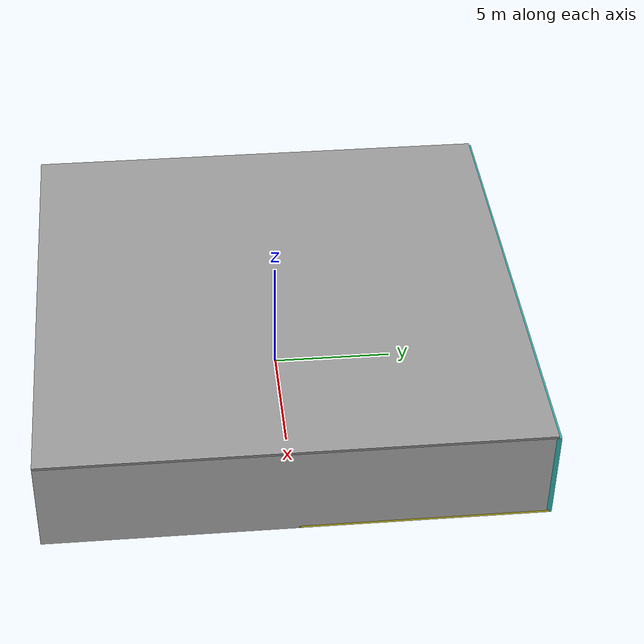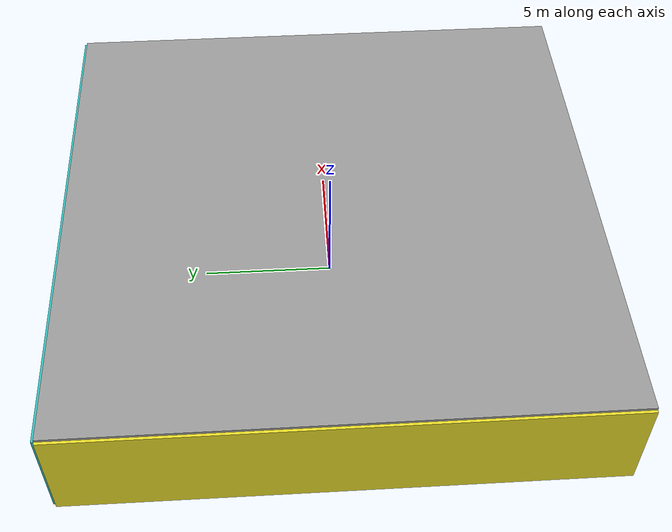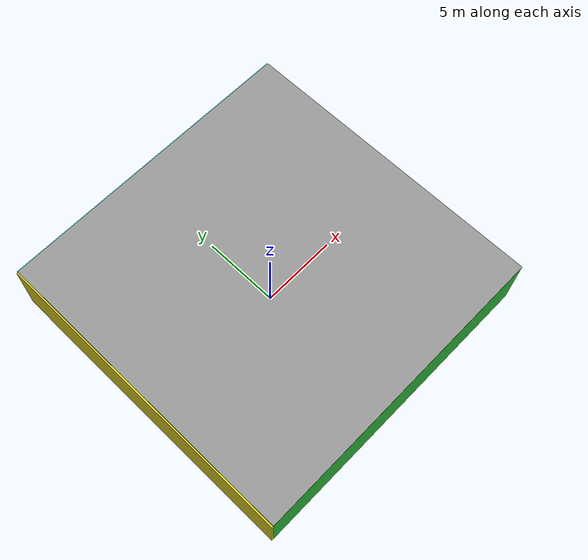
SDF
<sdf version="1.4">
 <world name="default">
  <physics type="ode">
   <max_step_size>0.001</max_step_size>
   <real_time_factor>1</real_time_factor>
   <real_time_update_rate>1000</real_time_update_rate>
   <gravity>0 0 -9.8</gravity>
  </physics>
  <scene><ambient>0.4 0.4 0.4 1</ambient><background>0.7 0.7 0.7 1</background><shadows>1</shadows></scene>
  <model name="Surrounding">
   <static>1</static>
   <link name="Ceiling">
    <collision name="Ceiling_Collision"><geometry><box><size>20 20 0.1</size></box></geometry></collision>
    <visual name="Ceiling_Visual">
     <geometry><box><size>20 20 0.1</size></box></geometry>
     <material>
      <script><uri>file://media/materials/scripts/gazebo.material</uri><name>Gazebo/GreyGradientSky</name></script>
     </material>
    </visual>
    <pose>0 0 4.05 0 0 0</pose>
   </link>
   <link name="Wall_South">
    <collision name="Wall_South_Collision">
     <geometry><box><size>20 0 4</size></box></geometry>
     <pose>0 0 2 0 -0 0</pose>
    </collision>
    <visual name="Wall_South_Visual">
     <pose>0 0 2 0 -0 0</pose>
     <geometry><box><size>20 0 4</size></box></geometry>
     <material>
      <script><uri>file://media/materials/scripts/gazebo.material</uri><name>Gazebo/Green</name></script>
     </material>
    </visual>
    <velocity_decay><linear>0</linear><angular>0</angular></velocity_decay>
    <pose>0 -10 0 0 -0 0</pose>
   </link>
   <link name="Wall_East">
    <collision name="Wall_21_Collision">
     <geometry><box><size>20 0 4</size></box></geometry>
     <pose>0 0 2 0 -0 0</pose>
    </collision>
    <visual name="Wall_21_Visual">
     <pose>0 0 2 0 -0 0</pose>
     <geometry><box><size>20 0 4</size></box></geometry>
     <material>
      <script><uri>file://media/materials/scripts/gazebo.material</uri><name>Gazebo/CloudySky</name></script>
     </material>
    </visual>
    <velocity_decay><linear>0</linear><angular>0</angular></velocity_decay>
    <pose>10 0 0 0 -0 1.5708</pose>
   </link>
   <link name="Wall_North">
    <collision name="Wall_22_Collision">
     <geometry><box><size>20 0.2 4</size></box></geometry>
     <pose>0 0 2 0 -0 0</pose>
    </collision>
    <visual name="Wall_22_Visual">
     <pose>0 0 2 0 -0 0</pose>
     <geometry><box><size>20 0.2 4</size></box></geometry>
     <material>
      <script><uri>file://media/materials/scripts/gazebo.material</uri><name>Gazebo/Turquoise</name></script>
     </material>
    </visual>
    <velocity_decay><linear>0</linear><angular>0</angular></velocity_decay>
    <pose>0 10 0 0 -0 0</pose>
   </link>
   <link name="Wall_West">
    <collision name="Wall_23_Collision">
     <geometry><box><size>20 0.2 4</size></box></geometry>
     <pose>0 0 2 0 -0 0</pose>
    </collision>
    <visual name="Wall_23_Visual">
     <pose>0 0 2 0 -0 0</pose>
     <geometry><box><size>20 0.2 4</size></box></geometry>
     <material>
      <script><uri>file://media/materials/scripts/gazebo.material</uri><name>Gazebo/YellowGlow</name></script>
     </material>
    </visual>
    <velocity_decay><linear>0</linear><angular>0</angular></velocity_decay>
    <pose>-10 0 0 0 0 -1.5708</pose>
   </link>
   <link name="Ground_link">
    <collision name="collision">
     <pose>0 0 .05 0 -0 0</pose>
     <geometry><box><size>20 20 0.1</size></box></geometry>
    </collision>
    <visual name="visual">
     <pose>0 0 .05 0 -0 0</pose>
     <geometry><box><size>20 20 0.1</size></box></geometry>
     <material>
      <script><uri>file://media/materials/scripts/gazebo.material</uri><name>Gazebo/YellowGlow</name></script>
     </material>
    </visual>
   </link>
   <static>1</static>
  </model>
  <spherical_coordinates>
   <surface_model>EARTH_WGS84</surface_model>
   <latitude_deg>0</latitude_deg>
   <longitude_deg>0</longitude_deg>
   <elevation>0</elevation>
   <heading_deg>0</heading_deg>
  </spherical_coordinates>
  <light name="lightball_0" type="diffuse">
   <diffuse>0.8 0.8 0.8 1</diffuse>
   <specular>0.2 0.2 0.2 1</specular>
   <attenuation>
    <range>100</range>
    <constant>0.7</constant>
    <linear>0.01</linear>
    <quadratic>0.001</quadratic>
   </attenuation>
   <direction>-0.5 0.1 -0.9</direction>
   <pose>-5.58688599175 4.24240881931 2.00678716299 0 0 0</pose>
  </light>
  <light name="lightball_1" type="diffuse">
   <diffuse>0.8 0.8 0.8 1</diffuse>
   <specular>0.2 0.2 0.2 1</specular>
   <attenuation>
    <range>100</range>
    <constant>0.7</constant>
    <linear>0.01</linear>
    <quadratic>0.001</quadratic>
   </attenuation>
   <direction>-0.5 0.1 -0.9</direction>
   <pose>-4.00064684762 -6.99512867907 1.41435244498 0 0 0</pose>
  </light>
  <light name="lightball_2" type="diffuse">
   <diffuse>0.8 0.8 0.8 1</diffuse>
   <specular>0.2 0.2 0.2 1</specular>
   <attenuation>
    <range>100</range>
    <constant>0.7</constant>
    <linear>0.01</linear>
    <quadratic>0.001</quadratic>
   </attenuation>
   <direction>-0.5 0.1 -0.9</direction>
   <pose>3.90882268297 4.72238236768 3.86981234803 0 0 0</pose>
  </light>
  <light name="lightball_3" type="diffuse">
   <diffuse>0.8 0.8 0.8 1</diffuse>
   <specular>0.2 0.2 0.2 1</specular>
   <attenuation>
    <range>100</range>
    <constant>0.7</constant>
    <linear>0.01</linear>
    <quadratic>0.001</quadratic>
   </attenuation>
   <direction>-0.5 0.1 -0.9</direction>
   <pose>-5.15398772869 -5.78989343139 1.28799335943 0 0 0</pose>
  </light>
  <light name="lightball_4" type="diffuse">
   <diffuse>0.8 0.8 0.8 1</diffuse>
   <specular>0.2 0.2 0.2 1</specular>
   <attenuation>
    <range>100</range>
    <constant>0.7</constant>
    <linear>0.01</linear>
    <quadratic>0.001</quadratic>
   </attenuation>
   <direction>-0.5 0.1 -0.9</direction>
   <pose>5.58881585605 -4.92991757302 2.42258152089 0 0 0</pose>
  </light>
  <light name="lightball_5" type="diffuse">
   <diffuse>0.8 0.8 0.8 1</diffuse>
   <specular>0.2 0.2 0.2 1</specular>
   <attenuation>
    <range>100</range>
    <constant>0.7</constant>
    <linear>0.01</linear>
    <quadratic>0.001</quadratic>
   </attenuation>
   <direction>-0.5 0.1 -0.9</direction>
   <pose>-8.21165892684 1.76144463307 1.52288256316 0 0 0</pose>
  </light>
  <light name="lightball_6" type="diffuse">
   <diffuse>0.8 0.8 0.8 1</diffuse>
   <specular>0.2 0.2 0.2 1</specular>
   <attenuation>
    <range>100</range>
    <constant>0.7</constant>
    <linear>0.01</linear>
    <quadratic>0.001</quadratic>
   </attenuation>
   <direction>-0.5 0.1 -0.9</direction>
   <pose>-9.57955486542 7.74750081816 2.88486586926 0 0 0</pose>
  </light>
  <light name="lightball_7" type="diffuse">
   <diffuse>0.8 0.8 0.8 1</diffuse>
   <specular>0.2 0.2 0.2 1</specular>
   <attenuation>
    <range>100</range>
    <constant>0.7</constant>
    <linear>0.01</linear>
    <quadratic>0.001</quadratic>
   </attenuation>
   <direction>-0.5 0.1 -0.9</direction>
   <pose>8.28332998635 7.0491755059 0.816353474267 0 0 0</pose>
  </light>
  <light name="lightball_8" type="diffuse">
   <diffuse>0.8 0.8 0.8 1</diffuse>
   <specular>0.2 0.2 0.2 1</specular>
   <attenuation>
    <range>100</range>
    <constant>0.7</constant>
    <linear>0.01</linear>
    <quadratic>0.001</quadratic>
   </attenuation>
   <direction>-0.5 0.1 -0.9</direction>
   <pose>0.277078964469 5.26775867954 1.39707643323 0 0 0</pose>
  </light>
  <light name="lightball_9" type="diffuse">
   <diffuse>0.8 0.8 0.8 1</diffuse>
   <specular>0.2 0.2 0.2 1</specular>
   <attenuation>
    <range>100</range>
    <constant>0.7</constant>
    <linear>0.01</linear>
    <quadratic>0.001</quadratic>
   </attenuation>
   <direction>-0.5 0.1 -0.9</direction>
   <pose>5.76944512227 6.4739916357 3.87188763437 0 0 0</pose>
  </light>
  <light name="lightball_10" type="diffuse">
   <diffuse>0.8 0.8 0.8 1</diffuse>
   <specular>0.2 0.2 0.2 1</specular>
   <attenuation>
    <range>100</range>
    <constant>0.7</constant>
    <linear>0.01</linear>
    <quadratic>0.001</quadratic>
   </attenuation>
   <direction>-0.5 0.1 -0.9</direction>
   <pose>5.92541322959 7.1963603988 1.11383573302 0 0 0</pose>
  </light>
  <light name="lightball_11" type="diffuse">
   <diffuse>0.8 0.8 0.8 1</diffuse>
   <specular>0.2 0.2 0.2 1</specular>
   <attenuation>
    <range>100</range>
    <constant>0.7</constant>
    <linear>0.01</linear>
    <quadratic>0.001</quadratic>
   </attenuation>
   <direction>-0.5 0.1 -0.9</direction>
   <pose>-9.61485482515 -3.38475905067 3.8009405719 0 0 0</pose>
  </light>
  <include><uri>model://cabinet</uri><pose>-6.40436856122 -3.78589292912 0 0 0 0.278042423879</pose></include>
  <include><uri>model://cabinet</uri><pose>-4.23746850166 -7.60728304857 0 0 0 1.3376853964</pose></include>
  <include>
   <uri>model://robocup_3Dsim_goal</uri>
   <pose>-4.66695112248 2.53941140909 0 0 0 2.48437152418</pose>
  </include>
  <include>
   <uri>model://textured_shapes</uri>
   <pose>1.9290998882 -3.93591133008 0 0 0 0.148817448751</pose>
  </include>
  <include><uri>model://table</uri><pose>3.4442752932 -2.17468486405 0 0 0 1.72953462384</pose></include>
  <include>
   <uri>model://textured_shapes</uri>
   <pose>4.48570636913 7.45670961865 0 0 0 1.53596287391</pose>
  </include>
  <include><uri>model://cabinet</uri><pose>8.34296460705 -8.34795767357 0 0 0 3.08200065458</pose></include>
  <include><uri>model://table</uri><pose>7.97689581724 -5.56620057724 0 0 0 1.46321142794</pose></include>
 </world>
</sdf>

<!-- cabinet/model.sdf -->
<sdf version="1.5">
  <model name="cabinet">
    <static>true</static>
    <link name="cabinet_bottom_plate">
      <inertial>
        <pose>0 0 -1 0 0 0</pose>
        <inertia>
          <ixx>2.050000</ixx>
          <ixy>0</ixy>
          <ixz>0</ixz>
          <iyy>2.050000</iyy>
          <iyz>0</iyz>
          <izz>2.050000</izz>
        </inertia>
        <mass>25.000000</mass>
      </inertial>
      <collision name="cabinet_bottom_plate_geom">
        <pose>0 0 0.010000 0 0 0</pose>
        <geometry>
          <box>
            <size>0.450000 0.450000 0.020000</size>
          </box>
        </geometry>
      </collision>
      <visual name="cabinet_bottom_plate_geom_visual">
        <pose>0 0 0.010000 0 0 0</pose>
        <geometry>
          <box>
            <size>0.450000 0.450000 0.020000</size>
          </box>
        </geometry>
        <material>
          <script>
            <uri>model://media/materials/scripts/gazebo.material</uri>
            <name>Gazebo/Wood</name>
          </script>
        </material>
      </visual>
      <collision name="cabinet_bottom_plate_geom_cabinet_back_plate">
        <pose>0.235000 0 0.510000 0 0 0</pose>
        <geometry>
          <box>
            <size>0.020000 0.450000 1.020000</size>
          </box>
        </geometry>
      </collision>
      <visual name="cabinet_bottom_plate_geom_cabinet_back_plate_visual">
        <pose>0.235000 0 0.510000 0 0 0</pose>
        <geometry>
          <box>
            <size>0.020000 0.450000 1.020000</size>
          </box>
        </geometry>
        <material>
          <script>
            <uri>model://media/materials/scripts/gazebo.material</uri>
            <name>Gazebo/Wood</name>
          </script>
        </material>
      </visual>
      <collision name="cabinet_bottom_plate_geom_cabinet_left_plate">
        <pose>0 0.235000 0.510000 0 0 0</pose>
        <geometry>
          <box>
            <size>0.450000 0.020000 1.020000</size>
          </box>
        </geometry>
      </collision>
      <visual name="cabinet_bottom_plate_geom_cabinet_left_plate_visual">
        <pose>0 0.235000 0.510000 0 0 0</pose>
        <geometry>
          <box>
            <size>0.450000 0.020000 1.020000</size>
          </box>
        </geometry>
        <material>
          <script>
            <uri>model://media/materials/scripts/gazebo.material</uri>
            <name>Gazebo/Wood</name>
          </script>
        </material>
      </visual>
      <collision name="cabinet_bottom_plate_geom_cabinet_middle_plate">
        <pose>0 0 0.510000 0 0 0</pose>
        <geometry>
          <box>
            <size>0.450000 0.450000 0.020000</size>
          </box>
        </geometry>
      </collision>
      <visual name="cabinet_bottom_plate_geom_cabinet_middle_plate_visual">
        <pose>0 0 0.510000 0 0 0</pose>
        <geometry>
          <box>
            <size>0.450000 0.450000 0.020000</size>
          </box>
        </geometry>
        <material>
          <script>
            <uri>model://media/materials/scripts/gazebo.material</uri>
            <name>Gazebo/Wood</name>
          </script>
        </material>
      </visual>
      <collision name="cabinet_bottom_plate_geom_cabinet_right_plate">
        <pose>0 -0.235000 0.510000 0 0 0</pose>
        <geometry>
          <box>
            <size>0.450000 0.020000 1.020000</size>
          </box>
        </geometry>
      </collision>
      <visual name="cabinet_bottom_plate_geom_cabinet_right_plate_visual">
        <pose>0 -0.235000 0.510000 0 0 0</pose>
        <geometry>
          <box>
            <size>0.450000 0.020000 1.020000</size>
          </box>
        </geometry>
        <material>
          <script>
            <uri>model://media/materials/scripts/gazebo.material</uri>
            <name>Gazebo/Wood</name>
          </script>
        </material>
      </visual>
      <collision name="cabinet_bottom_plate_geom_cabinet_top_plate">
        <pose>0 0 1.010000 0 0 0</pose>
        <geometry>
          <box>
            <size>0.450000 0.450000 0.020000</size>
          </box>
        </geometry>
      </collision>
      <visual name="cabinet_bottom_plate_geom_cabinet_top_plate_visual">
        <pose>0 0 1.010000 0 0 0</pose>
        <geometry>
          <box>
            <size>0.450000 0.450000 0.020000</size>
          </box>
        </geometry>
        <material>
          <script>
            <uri>model://media/materials/scripts/gazebo.material</uri>
            <name>Gazebo/Wood</name>
          </script>
        </material>
      </visual>
    </link>
  </model>
</sdf>

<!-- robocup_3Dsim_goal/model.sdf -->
<sdf version="1.5">
  <model name="robocup_3d_goal">
    <static>true</static>
    <link name="left_post">
      <pose>0 1.05 0.45 0 0 0</pose>
      <collision name="collision">
        <geometry>
          <cylinder>
            <radius>0.05</radius>
            <length>0.9</length>
          </cylinder>
        </geometry>
      </collision>
      <visual name="visual">
        <geometry>
          <cylinder>
            <radius>0.05</radius>
            <length>0.9</length>
          </cylinder>
        </geometry>
        <material>
          <script>
            <uri>file://media/materials/scripts/gazebo.material</uri>
            <name>Gazebo/ZincYellow</name>
          </script>
        </material>
      </visual>
    </link>
    <link name="left_support_horiz_lower">
      <pose>0.30 1.05 0.01 0 0 0</pose>
      <collision name="collision">
        <geometry>
          <box>
            <size>0.50 0.02 0.02</size>
          </box>
        </geometry>
      </collision>
      <visual name="visual">
        <geometry>
          <box>
            <size>0.50 0.02 0.02</size>
          </box>
        </geometry>
        <material>
          <script>
            <uri>file://media/materials/scripts/gazebo.material</uri>
            <name>Gazebo/White</name>
          </script>
        </material>
      </visual>
    </link>
    <link name="left_support_horiz_upper">
      <pose>0.30 1.05 0.79 0 0 0</pose>
      <collision name="collision">
        <geometry>
          <box>
            <size>0.50 0.02 0.02</size>
          </box>
        </geometry>
      </collision>
      <visual name="visual">
        <geometry>
          <box>
            <size>0.50 0.02 0.02</size>
          </box>
        </geometry>
        <material>
          <script>
            <uri>file://media/materials/scripts/gazebo.material</uri>
            <name>Gazebo/White</name>
          </script>
        </material>
      </visual>
    </link>
    <link name="left_support_vertical">
      <pose>0.56 1.05 0.4 0 1.5708 0</pose>
      <collision name="collision">
        <geometry>
          <box>
            <size>0.80 0.02 0.02</size>
          </box>
        </geometry>
      </collision>
      <visual name="visual">
        <geometry>
          <box>
            <size>0.80 0.02 0.02</size>
          </box>
        </geometry>
        <material>
          <script>
            <uri>file://media/materials/scripts/gazebo.material</uri>
            <name>Gazebo/White</name>
          </script>
        </material>
      </visual>
    </link>
    <link name="right_support_horiz_lower">
      <pose>0.30 -1.05 0.01 0 0 0</pose>
      <collision name="collision">
        <geometry>
          <box>
            <size>0.50 0.02 0.02</size>
          </box>
        </geometry>
      </collision>
      <visual name="visual">
        <geometry>
          <box>
            <size>0.50 0.02 0.02</size>
          </box>
        </geometry>
        <material>
          <script>
            <uri>file://media/materials/scripts/gazebo.material</uri>
            <name>Gazebo/White</name>
          </script>
        </material>
      </visual>
    </link>
    <link name="right_support_horiz_upper">
      <pose>0.30 -1.05 0.79 0 0 0</pose>
      <collision name="collision">
        <geometry>
          <box>
            <size>0.50 0.02 0.02</size>
          </box>
        </geometry>
      </collision>
      <visual name="visual">
        <geometry>
          <box>
            <size>0.50 0.02 0.02</size>
          </box>
        </geometry>
        <material>
          <script>
            <uri>file://media/materials/scripts/gazebo.material</uri>
            <name>Gazebo/White</name>
          </script>
        </material>
      </visual>
    </link>
    <link name="right_support_vertical">
      <pose>0.56 -1.05 0.4 0 1.5708 0</pose>
      <collision name="collision">
        <geometry>
          <box>
            <size>0.80 0.02 0.02</size>
          </box>
        </geometry>
      </collision>
      <visual name="visual">
        <geometry>
          <box>
            <size>0.80 0.02 0.02</size>
          </box>
        </geometry>
        <material>
          <script>
            <uri>file://media/materials/scripts/gazebo.material</uri>
            <name>Gazebo/White</name>
          </script>
        </material>
      </visual>
    </link>
    <link name="center_support_horiz_lower">
      <pose>0.56 0 0.01 0 1.5708 0</pose>
      <collision name="collision">
        <geometry>
          <box>
            <size>0.02 2.08 0.02</size>
          </box>
        </geometry>
      </collision>
      <visual name="visual">
        <geometry>
          <box>
            <size>0.02 2.08 0.02</size>
          </box>
        </geometry>
        <material>
          <script>
            <uri>file://media/materials/scripts/gazebo.material</uri>
            <name>Gazebo/White</name>
          </script>
        </material>
      </visual>
    </link>
    <link name="center_support_horiz_upper">
      <pose>0.56 0 0.79 0 1.5708 0</pose>
      <collision name="collision">
        <geometry>
          <box>
            <size>0.02 2.08 0.02</size>
          </box>
        </geometry>
      </collision>
      <visual name="visual">
        <geometry>
          <box>
            <size>0.02 2.08 0.02</size>
          </box>
        </geometry>
        <material>
          <script>
            <uri>file://media/materials/scripts/gazebo.material</uri>
            <name>Gazebo/White</name>
          </script>
        </material>
      </visual>
    </link>
    <link name="right_post">
      <pose>0 -1.05 0.45 0 0 0</pose>
      <collision name="collision">
        <geometry>
          <cylinder>
            <radius>0.05</radius>
            <length>0.9</length>
          </cylinder>
        </geometry>
      </collision>
      <visual name="visual">
        <geometry>
          <cylinder>
            <radius>0.05</radius>
            <length>0.9</length>
          </cylinder>
        </geometry>
        <material>
          <script>
            <uri>file://media/materials/scripts/gazebo.material</uri>
            <name>Gazebo/ZincYellow</name>
          </script>
        </material>
      </visual>
    </link>
    <link name="crossbar">
      <pose>0 0 0.85 1.57 1.57 0</pose>
      <collision name="collision">
        <geometry>
          <cylinder>
            <radius>0.05</radius>
            <length>2.0</length>
          </cylinder>
        </geometry>
      </collision>
      <visual name="visual">
        <geometry>
          <cylinder>
            <radius>0.05</radius>
            <length>2.0</length>
          </cylinder>
        </geometry>
        <material>
          <script>
            <uri>file://media/materials/scripts/gazebo.material</uri>
            <name>Gazebo/ZincYellow</name>
          </script>
        </material>
      </visual>
    </link>
    <link name="center_net">
      <pose>0.56 0 0.40 0 0 0</pose>
      <collision name="collision">
        <geometry>
          <box>
            <size>0.01 2.1 0.80</size>
          </box>
        </geometry>
      </collision>
      <visual name="visual">
        <geometry>
          <box>
            <size>0.01 2.1 0.80</size>
          </box>
        </geometry>
        <material>
          <script>
            <uri>model://../model_source/models/robocup09_spl_field/materials/scripts/</uri>
            <uri>model://../model_source/models/robocup09_spl_field/materials/textures/</uri>
            <name>RoboCup/Net</name>
          </script>
        </material>
      </visual>
    </link>
    <link name="left_net">
      <pose>0.30 1.05 0.40 0 0 0</pose>
      <collision name="collision">
        <geometry>
          <box>
            <size>0.50 0.01 0.76</size>
          </box>
        </geometry>
      </collision>
      <visual name="visual">
        <geometry>
          <box>
            <size>0.50 0.01 0.76</size>
          </box>
        </geometry>
        <material>
          <script>
            <uri>model://../model_source/models/robocup09_spl_field/materials/scripts/</uri>
            <uri>model://../model_source/models/robocup09_spl_field/materials/textures/</uri>
            <name>RoboCup/Net</name>
          </script>
        </material>
      </visual>
    </link>
    <link name="right_net">
      <pose>0.30 -1.05 0.40 0 0 0</pose>
      <collision name="collision">
        <geometry>
          <box>
            <size>0.50 0.01 0.76</size>
          </box>
        </geometry>
      </collision>
      <visual name="visual">
        <geometry>
          <box>
            <size>0.50 0.01 0.76</size>
          </box>
        </geometry>
        <material>
          <script>
            <uri>model://../model_source/models/robocup09_spl_field/materials/scripts/</uri>
            <uri>model://../model_source/models/robocup09_spl_field/materials/textures/</uri>
            <name>RoboCup/Net</name>
          </script>
        </material>
      </visual>
    </link>
  </model>
</sdf>

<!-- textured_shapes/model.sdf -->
<sdf version="1.6">
  <model name="textured_shapes">
    <pose>0 0 0.5 0 0 0</pose>
    <link name="box">
      <pose>0 -1.5 0 0 0 0</pose>
      <collision name="collision">
        <geometry>
          <box>
            <size>1 1 1</size>
          </box>
        </geometry>
      </collision>
      <visual name="visual">
        <geometry>
          <box>
            <size>1 1 1</size>
          </box>
        </geometry>
        <material>
          <script>
            <uri>model://../model_source/models/textured_shapes/materials/scripts</uri>
            <uri>model://../model_source/models/textured_shapes/materials/textures</uri>
            <name>TexturedShape/Squares</name>
          </script>
        </material>
      </visual>
    </link>
    <link name="sphere">
      <collision name="collision">
        <geometry>
          <sphere>
            <radius>0.5</radius>
          </sphere>
        </geometry>
      </collision>
      <visual name="visual">
        <geometry>
          <sphere>
            <radius>0.5</radius>
          </sphere>
        </geometry>
        <material>
          <script>
            <uri>model://../model_source/models/textured_shapes/materials/scripts</uri>
            <uri>model://../model_source/models/textured_shapes/materials/textures</uri>
            <name>TexturedShape/Squares</name>
          </script>
        </material>
      </visual>
    </link>
    <link name="cylinder">
      <pose>0 1.5 0 0 0 0</pose>
      <collision name="collision">
        <geometry>
          <cylinder>
            <radius>0.5</radius>
            <length>1</length>
          </cylinder>
        </geometry>
      </collision>
      <visual name="visual">
        <geometry>
          <cylinder>
            <radius>0.5</radius>
            <length>1</length>
          </cylinder>
        </geometry>
        <material>
          <script>
            <uri>model://../model_source/models/textured_shapes/materials/scripts</uri>
            <uri>model://../model_source/models/textured_shapes/materials/textures</uri>
            <name>TexturedShape/Squares</name>
          </script>
        </material>
      </visual>
    </link>
  </model>
</sdf>

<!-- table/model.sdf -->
<sdf version="1.5">
  <model name="table">
    <static>true</static>
    <link name="link">
      <collision name="surface">
        <pose>0 0 1.0 0 0 0</pose>
        <geometry>
          <box>
            <size>1.5 0.8 0.03</size>
          </box>
        </geometry>
        <surface>
          <friction>
            <ode>
              <mu>0.6</mu>
              <mu2>0.6</mu2>
            </ode>
          </friction>
        </surface>
      </collision>
      <visual name="visual1">
        <pose>0 0 1.0 0 0 0</pose>
        <geometry>
          <box>
            <size>1.5 0.8 0.03</size>
          </box>
        </geometry>
        <material>
          <script>
            <uri>model://media/materials/scripts/gazebo.material</uri>
            <name>Gazebo/Wood</name>
          </script>
        </material>
      </visual>
      <collision name="front_left_leg">
        <pose>0.68 0.38 0.5 0 0 0</pose>
        <geometry>
          <cylinder>
            <radius>0.02</radius>
            <length>1.0</length>
          </cylinder>
        </geometry>
      </collision>
      <visual name="front_left_leg">
        <pose>0.68 0.38 0.5 0 0 0</pose>
        <geometry>
          <cylinder>
            <radius>0.02</radius>
            <length>1.0</length>
          </cylinder>
        </geometry>
        <material>
          <script>
            <uri>model://media/materials/scripts/gazebo.material</uri>
            <name>Gazebo/Grey</name>
          </script>
        </material>
      </visual>
      <collision name="front_right_leg">
        <pose>0.68 -0.38 0.5 0 0 0</pose>
        <geometry>
          <cylinder>
            <radius>0.02</radius>
            <length>1.0</length>
          </cylinder>
        </geometry>
      </collision>
      <visual name="front_right_leg">
        <pose>0.68 -0.38 0.5 0 0 0</pose>
        <geometry>
          <cylinder>
            <radius>0.02</radius>
            <length>1.0</length>
          </cylinder>
        </geometry>
        <material>
          <script>
            <uri>model://media/materials/scripts/gazebo.material</uri>
            <name>Gazebo/Grey</name>
          </script>
        </material>
      </visual>
      <collision name="back_right_leg">
        <pose>-0.68 -0.38 0.5 0 0 0</pose>
        <geometry>
          <cylinder>
            <radius>0.02</radius>
            <length>1.0</length>
          </cylinder>
        </geometry>
      </collision>
      <visual name="back_right_leg">
        <pose>-0.68 -0.38 0.5 0 0 0</pose>
        <geometry>
          <cylinder>
            <radius>0.02</radius>
            <length>1.0</length>
          </cylinder>
        </geometry>
        <material>
          <script>
            <uri>model://media/materials/scripts/gazebo.material</uri>
            <name>Gazebo/Grey</name>
          </script>
        </material>
      </visual>
      <collision name="back_left_leg">
        <pose>-0.68 0.38 0.5 0 0 0</pose>
        <geometry>
          <cylinder>
            <radius>0.02</radius>
            <length>1.0</length>
          </cylinder>
        </geometry>
      </collision>
      <visual name="back_left_leg">
        <pose>-0.68 0.38 0.5 0 0 0</pose>
        <geometry>
          <cylinder>
            <radius>0.02</radius>
            <length>1.0</length>
          </cylinder>
        </geometry>
        <material>
          <script>
            <uri>model://media/materials/scripts/gazebo.material</uri>
            <name>Gazebo/Grey</name>
          </script>
        </material>
      </visual>
    </link>
  </model>
</sdf>
